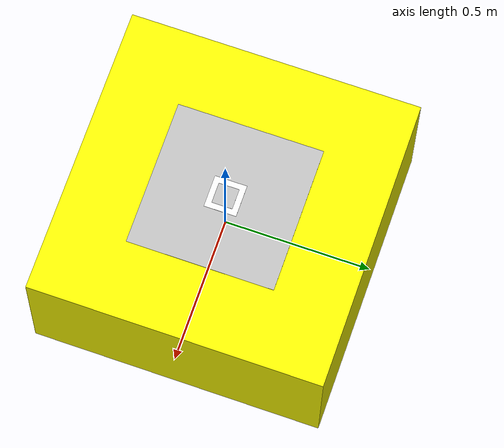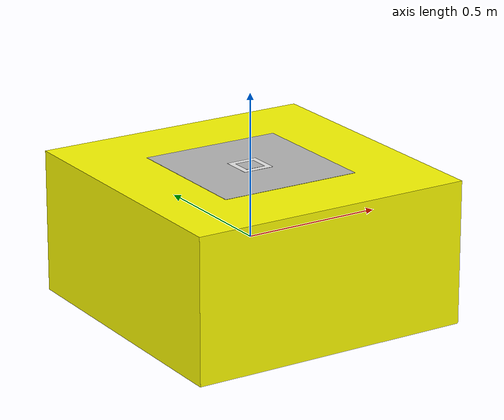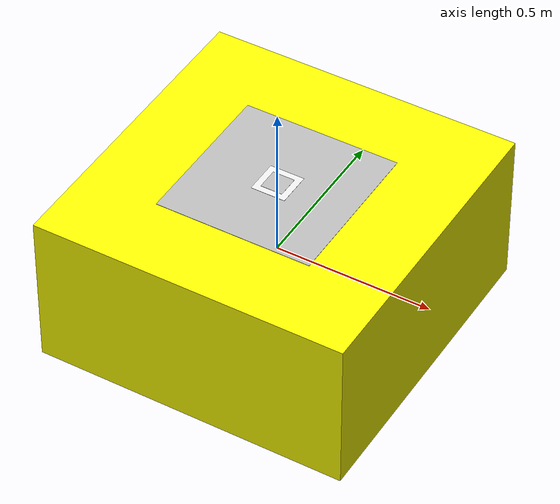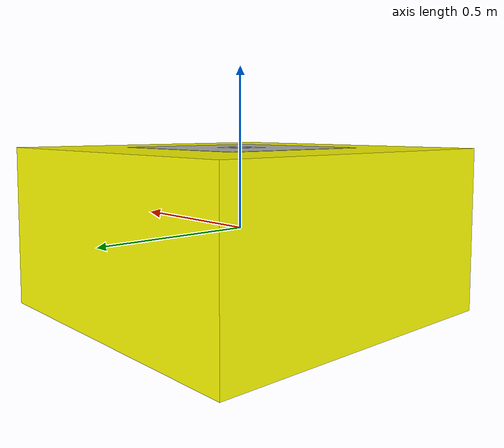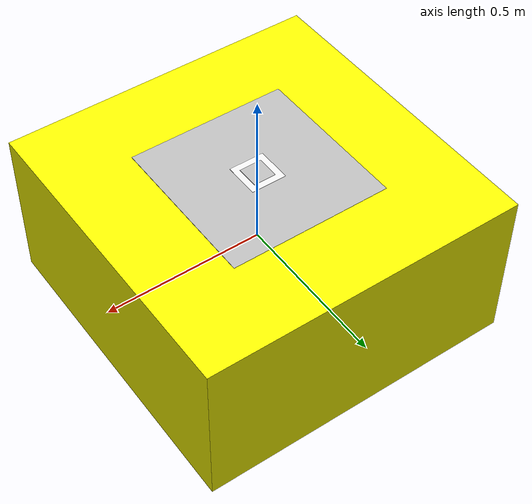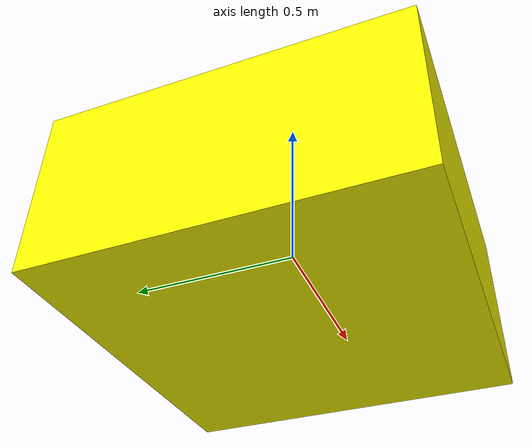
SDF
<?xml version="1.0" ?>
<sdf version="1.6">
  <model name="landing_target">
    <static>false</static>
    <link name="link">
      <inertial>
        <mass>10.0</mass>
        <inertia>
          <ixx>1.0</ixx><ixy>0</ixy><ixz>0</ixz>
          <iyy>1.0</iyy><iyz>0</iyz>
          <izz>1.5</izz>
        </inertia>
      </inertial>

      <visual name="box_visual">
        <geometry><box><size>1.0 1.0 0.5</size></box></geometry>
        <material><ambient>1 1 0 1</ambient><diffuse>1 1 0 1</diffuse></material>
      </visual>

      <visual name="marker_large">
        <pose>0 0 0.251 0 0 0</pose>
        <geometry><box><size>0.5 0.5 0.001</size></box></geometry>
        <material>
          <script>
            <uri>model://landing_target/materials/scripts</uri>
            <uri>model://landing_target/materials/textures</uri>
            <name>Aruco/Marker0</name>
          </script>
        </material>
      </visual>

      <visual name="marker_small_border">
        <pose>0 0 0.2515 0 0 0</pose>
        <geometry><box><size>0.11 0.11 0.001</size></box></geometry>
        <material>
          <script>
            <name>Gazebo/White</name>
          </script>
        </material>
      </visual>

      <visual name="marker_small">
        <pose>0 0 0.252 0 0 0</pose>
        <geometry><box><size>0.07 0.07 0.001</size></box></geometry>
        <material>
          <script>
            <uri>model://landing_target/materials/scripts</uri>
            <uri>model://landing_target/materials/textures</uri>
            <name>Aruco/Marker1</name>
          </script>
        </material>
      </visual>

      <collision name="collision">
        <geometry><box><size>1.0 1.0 0.5</size></box></geometry>
        <surface>
          <friction>
            <ode>
              <mu>1.0</mu> <mu2>1.0</mu2>
            </ode>
          </friction>
          <contact>
            <ode>
              <kp>1000000.0</kp> <kd>1.0</kd>
              <max_vel>0.1</max_vel>
              <min_depth>0.001</min_depth>
            </ode>
          </contact>
        </surface>
      </collision>
    </link>

    <plugin name="object_controller" filename="libgazebo_ros_planar_move.so">
      <commandTopic>/target/cmd_vel</commandTopic>
      <odometryTopic>odom</odometryTopic>
      <odometryFrame>odom</odometryFrame>
      <odometryRate>30.0</odometryRate>
      <robotBaseFrame>link</robotBaseFrame>
    </plugin>
  </model>
</sdf>
